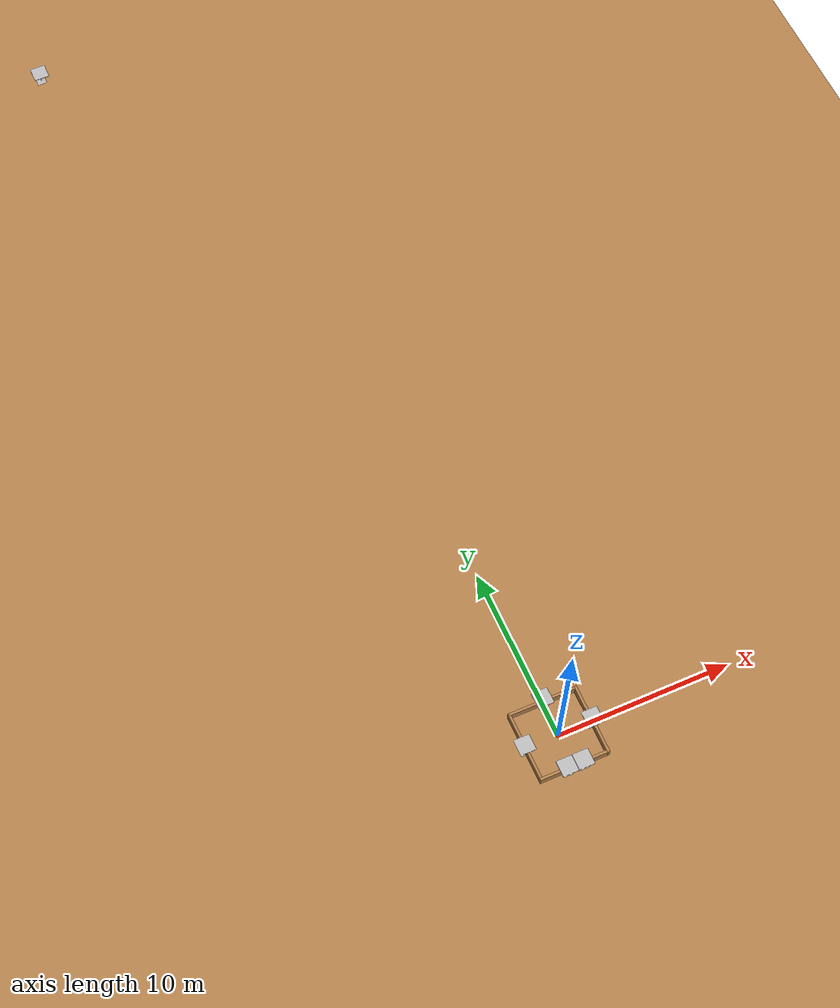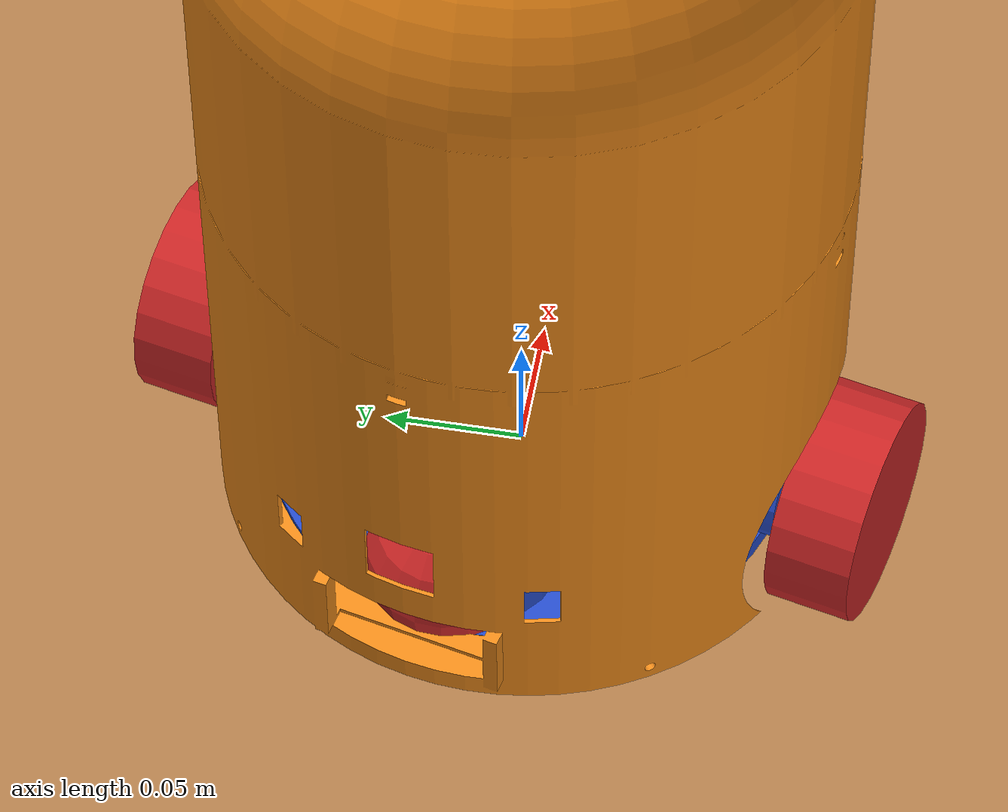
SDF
<sdf version="1.7">
 <world name="default">
  <light name="sun" type="directional">
   <pose>0 0 10 0 -0 0</pose>
   <diffuse>0.8 0.8 0.8 1</diffuse>
   <specular>0.1 0.1 0.1 1</specular>
   <attenuation>
    <range>1000</range>
    <constant>0.9</constant>
    <linear>0.01</linear>
    <quadratic>0.001</quadratic>
   </attenuation>
   <direction>-0.5 0.5 -1</direction>
   <spot><inner_angle>0</inner_angle><outer_angle>0</outer_angle><falloff>0</falloff></spot>
  </light>
  <model name="ground_plane">
   <static>1</static>
   <link name="link">
    <collision name="collision">
     <geometry><plane><normal>0 0 1</normal><size>100 100</size></plane></geometry>
     <surface><friction><ode><mu>100</mu><mu2>50</mu2></ode></friction></surface>
    </collision>
    <visual name="visual">
     <cast_shadows>0</cast_shadows>
     <geometry><plane><normal>0 0 1</normal><size>100 100</size></plane></geometry>
     <material>
      <script><uri>file://media/materials/scripts/gazebo.material</uri><name>Gazebo/Wood</name></script>
     </material>
    </visual>
   </link>
  </model>
  <gravity>0 0 -9.8</gravity>
  <magnetic_field>6e-06 2.3e-05 -4.2e-05</magnetic_field>
  <atmosphere type="adiabatic"/>
  <physics name="default_physics" default="0" type="ode">
   <max_step_size>0.001</max_step_size>
   <real_time_factor>1</real_time_factor>
   <real_time_update_rate>1000</real_time_update_rate>
  </physics>
  <scene><ambient>0.4 0.4 0.4 1</ambient><background>0.7 0.7 0.7 1</background><shadows>1</shadows></scene>
  <spherical_coordinates>
   <surface_model>EARTH_WGS84</surface_model>
   <latitude_deg>0</latitude_deg>
   <longitude_deg>0</longitude_deg>
   <elevation>0</elevation>
   <heading_deg>0</heading_deg>
  </spherical_coordinates>
  <model name="turtlebot3_square">
   <pose>-0.009396 -0.00946 0 0 -0 0</pose>
   <link name="Wall_0">
    <collision name="Wall_0_Collision">
     <geometry><box><size>4 0.15 0.5</size></box></geometry>
     <pose>0 0 0.25 0 -0 0</pose>
    </collision>
    <visual name="Wall_0_Visual">
     <pose>0 0 0.25 0 -0 0</pose>
     <geometry><box><size>4 0.15 0.5</size></box></geometry>
     <material>
      <script><uri>file://media/materials/scripts/gazebo.material</uri><name>Gazebo/Wood</name></script>
      <ambient>1 1 1 1</ambient>
     </material>
    </visual>
    <pose>0 1.925 0 0 -0 0</pose>
   </link>
   <link name="Wall_2">
    <collision name="Wall_2_Collision">
     <geometry><box><size>4 0.15 0.5</size></box></geometry>
     <pose>0 0 0.25 0 -0 0</pose>
    </collision>
    <visual name="Wall_2_Visual">
     <pose>0 0 0.25 0 -0 0</pose>
     <geometry><box><size>4 0.15 0.5</size></box></geometry>
     <material>
      <script><uri>file://media/materials/scripts/gazebo.material</uri><name>Gazebo/Wood</name></script>
      <ambient>1 1 1 1</ambient>
     </material>
    </visual>
    <pose>-1.925 0 0 0 0 -1.5708</pose>
   </link>
   <link name="Wall_3">
    <collision name="Wall_3_Collision">
     <geometry><box><size>4 0.15 0.5</size></box></geometry>
     <pose>0 0 0.25 0 -0 0</pose>
    </collision>
    <visual name="Wall_3_Visual">
     <pose>0 0 0.25 0 -0 0</pose>
     <geometry><box><size>4 0.15 0.5</size></box></geometry>
     <material>
      <script><uri>file://media/materials/scripts/gazebo.material</uri><name>Gazebo/Wood</name></script>
      <ambient>1 1 1 1</ambient>
     </material>
    </visual>
    <pose>0 -1.925 0 0 -0 0</pose>
   </link>
   <link name="Wall_4">
    <collision name="Wall_4_Collision">
     <geometry><box><size>4 0.15 0.5</size></box></geometry>
     <pose>0 0 0.25 0 -0 0</pose>
    </collision>
    <visual name="Wall_4_Visual">
     <pose>0 0 0.25 0 -0 0</pose>
     <geometry><box><size>4 0.15 0.5</size></box></geometry>
     <material>
      <script><uri>file://media/materials/scripts/gazebo.material</uri><name>Gazebo/Wood</name></script>
      <ambient>1 1 1 1</ambient>
     </material>
    </visual>
    <pose>1.925 0 0 0 -0 1.5708</pose>
   </link>
   <static>1</static>
  </model>
  <model name="my_robo">
   <link name="base_footprint">
    <inertial>
     <pose>1e-06 0 0.140868 0 -0 0</pose>
     <mass>140.009</mass>
     <inertia>
      <ixx>1.23241</ixx>
      <ixy>0.00024156</ixy>
      <ixz>0.000293737</ixz>
      <iyy>1.20933</iyy>
      <iyz>-0.0098106</iyz>
      <izz>0.246861</izz>
     </inertia>
    </inertial>
    <collision name="base_footprint_fixed_joint_lump__base_link_collision">
     <pose>0 0 0.03835 0 0 -1.57</pose>
     <geometry>
      <mesh>
       <scale>0.001 0.001 0.001</scale>
       <uri>/home/vsk/BumbleBot_WS/src/my_robot_model/urdf/meshes/Base_Plate.stl</uri>
      </mesh>
     </geometry>
    </collision>
    <collision name="base_footprint_fixed_joint_lump__laser_link_collision_1">
     <pose>0.0075 0 0.40335 0 -0 3.14</pose>
     <geometry><cylinder><length>0.046</length><radius>0.035</radius></cylinder></geometry>
    </collision>
    <collision name="base_footprint_fixed_joint_lump__robot_body_link_collision_2">
     <pose>0 0 0.0371 0 0 -1.57</pose>
     <geometry>
      <mesh>
       <scale>0.001 0.001 0.001</scale>
       <uri>/home/vsk/BumbleBot_WS/src/my_robot_model/urdf/meshes/Robot_Cover_Full.stl</uri>
      </mesh>
     </geometry>
    </collision>
    <visual name="base_footprint_fixed_joint_lump__base_link_visual">
     <pose>0 0 0.03835 0 0 -1.57</pose>
     <geometry>
      <mesh>
       <scale>0.001 0.001 0.001</scale>
       <uri>/home/vsk/BumbleBot_WS/src/my_robot_model/urdf/meshes/Base_Plate.stl</uri>
      </mesh>
     </geometry>
     <material>
      <script><name>Gazebo/Blue</name><uri>file://media/materials/scripts/gazebo.material</uri></script>
     </material>
    </visual>
    <visual name="base_footprint_fixed_joint_lump__laser_link_visual_1">
     <pose>0.0075 0 0.40335 0 -0 3.14</pose>
     <geometry><cylinder><length>0.046</length><radius>0.035</radius></cylinder></geometry>
     <material>
      <script><name>Gazebo/Green</name><uri>file://media/materials/scripts/gazebo.material</uri></script>
     </material>
    </visual>
    <visual name="base_footprint_fixed_joint_lump__robot_body_link_visual_2">
     <pose>0 0 0.0371 0 0 -1.57</pose>
     <geometry>
      <mesh>
       <scale>0.001 0.001 0.001</scale>
       <uri>/home/vsk/BumbleBot_WS/src/my_robot_model/urdf/meshes/Robot_Cover_Full.stl</uri>
      </mesh>
     </geometry>
     <material>
      <script><name>Gazebo/Orange</name><uri>file://media/materials/scripts/gazebo.material</uri></script>
     </material>
    </visual>
    <sensor name="laser" type="gpu_ray">
     <visualize>0</visualize>
     <update_rate>40</update_rate>
     <ray>
      <scan>
       <horizontal>
        <samples>720</samples>
        <resolution>1</resolution>
        <min_angle>0</min_angle>
        <max_angle>6.28</max_angle>
       </horizontal>
       <vertical><samples>1</samples><min_angle>0</min_angle><max_angle>0</max_angle></vertical>
      </scan>
      <range><min>0.1</min><max>6</max><resolution>0.1</resolution></range>
     </ray>
     <plugin name="gpu_laser" filename="libgazebo_ros_gpu_laser.so">
      <topicName>/scan</topicName>
      <frameName>laser_link</frameName>
      <robotNamespace>/</robotNamespace>
     </plugin>
     <pose>0.0075 0 0.40335 0 -0 3.14</pose>
    </sensor>
   </link>
   <joint name="front_castor_wheel_joint" type="revolute">
    <pose relative_to="base_footprint">0.07 0 0.05335 0 -0 0</pose>
    <parent>base_footprint</parent>
    <child>front_castor_wheel_link</child>
    <axis>
     <xyz>0 1 1</xyz>
     <limit><lower>-1e+16</lower><upper>1e+16</upper></limit>
     <dynamics><spring_reference>0</spring_reference><spring_stiffness>0</spring_stiffness></dynamics>
    </axis>
   </joint>
   <link name="front_castor_wheel_link">
    <pose relative_to="front_castor_wheel_joint">0 0 0 0 -0 0</pose>
    <inertial>
     <mass>0.50917</mass>
     <inertia>
      <ixx>0.0012185</ixx>
      <ixy>1.8059e-20</ixy>
      <ixz>3.0427e-20</ixz>
      <iyy>0.0012185</iyy>
      <iyz>-4.0491e-20</iyz>
      <izz>0.0022928</izz>
     </inertia>
    </inertial>
    <collision name="front_castor_wheel_link_collision">
     <geometry><sphere><radius>0.03</radius></sphere></geometry>
    </collision>
    <visual name="front_castor_wheel_link_visual">
     <geometry><sphere><radius>0.03</radius></sphere></geometry>
     <material>
      <script><name>Gazebo/Red</name><uri>file://media/materials/scripts/gazebo.material</uri></script>
     </material>
    </visual>
   </link>
   <joint name="left_wheel_joint" type="revolute">
    <pose relative_to="base_footprint">0 0.12 0.06335 -1.571 0 0</pose>
    <parent>base_footprint</parent>
    <child>left_wheel_link</child>
    <axis>
     <xyz>0 0 1</xyz>
     <limit><lower>-1e+16</lower><upper>1e+16</upper></limit>
     <dynamics><spring_reference>0</spring_reference><spring_stiffness>0</spring_stiffness></dynamics>
    </axis>
   </joint>
   <link name="left_wheel_link">
    <pose relative_to="left_wheel_joint">0 0 0 0 -0 0</pose>
    <inertial>
     <mass>0.50917</mass>
     <inertia>
      <ixx>0.0012185</ixx>
      <ixy>1.8059e-20</ixy>
      <ixz>3.0427e-20</ixz>
      <iyy>0.0012185</iyy>
      <iyz>-4.0491e-20</iyz>
      <izz>0.0022928</izz>
     </inertia>
    </inertial>
    <collision name="left_wheel_link_collision">
     <geometry><cylinder><length>0.03</length><radius>0.04</radius></cylinder></geometry>
    </collision>
    <visual name="left_wheel_link_visual">
     <geometry><cylinder><length>0.03</length><radius>0.04</radius></cylinder></geometry>
     <material>
      <script><name>Gazebo/Red</name><uri>file://media/materials/scripts/gazebo.material</uri></script>
     </material>
    </visual>
   </link>
   <joint name="rear_castor_wheel_joint" type="revolute">
    <pose relative_to="base_footprint">-0.07 0 0.05335 0 -0 0</pose>
    <parent>base_footprint</parent>
    <child>rear_castor_wheel_link</child>
    <axis>
     <xyz>0 1 1</xyz>
     <limit><lower>-1e+16</lower><upper>1e+16</upper></limit>
     <dynamics><spring_reference>0</spring_reference><spring_stiffness>0</spring_stiffness></dynamics>
    </axis>
   </joint>
   <link name="rear_castor_wheel_link">
    <pose relative_to="rear_castor_wheel_joint">0 0 0 0 -0 0</pose>
    <inertial>
     <mass>0.50917</mass>
     <inertia>
      <ixx>0.0012185</ixx>
      <ixy>1.8059e-20</ixy>
      <ixz>3.0427e-20</ixz>
      <iyy>0.0012185</iyy>
      <iyz>-4.0491e-20</iyz>
      <izz>0.0022928</izz>
     </inertia>
    </inertial>
    <collision name="rear_castor_wheel_link_collision">
     <geometry><sphere><radius>0.03</radius></sphere></geometry>
    </collision>
    <visual name="rear_castor_wheel_link_visual">
     <geometry><sphere><radius>0.03</radius></sphere></geometry>
     <material>
      <script><name>Gazebo/Red</name><uri>file://media/materials/scripts/gazebo.material</uri></script>
     </material>
    </visual>
   </link>
   <joint name="right_wheel_joint" type="revolute">
    <pose relative_to="base_footprint">0 -0.12 0.06335 1.571 -0 0</pose>
    <parent>base_footprint</parent>
    <child>right_wheel_link</child>
    <axis>
     <xyz>0 0 -1</xyz>
     <limit><lower>-1e+16</lower><upper>1e+16</upper></limit>
     <dynamics><spring_reference>0</spring_reference><spring_stiffness>0</spring_stiffness></dynamics>
    </axis>
   </joint>
   <link name="right_wheel_link">
    <pose relative_to="right_wheel_joint">0 0 0 0 -0 0</pose>
    <inertial>
     <mass>0.50917</mass>
     <inertia>
      <ixx>0.0012185</ixx>
      <ixy>1.8059e-20</ixy>
      <ixz>3.0427e-20</ixz>
      <iyy>0.0012185</iyy>
      <iyz>-4.0491e-20</iyz>
      <izz>0.0022928</izz>
     </inertia>
    </inertial>
    <collision name="right_wheel_link_collision">
     <geometry><cylinder><length>0.03</length><radius>0.04</radius></cylinder></geometry>
    </collision>
    <visual name="right_wheel_link_visual">
     <geometry><cylinder><length>0.03</length><radius>0.04</radius></cylinder></geometry>
     <material>
      <script><name>Gazebo/Red</name><uri>file://media/materials/scripts/gazebo.material</uri></script>
     </material>
    </visual>
   </link>
   <static>0</static>
   <plugin name="differential_drive_controller" filename="libgazebo_ros_diff_drive.so">
    <updateRate>10</updateRate>
    <leftJoint>left_wheel_joint</leftJoint>
    <rightJoint>right_wheel_joint</rightJoint>
    <wheelSeparation>0.23</wheelSeparation>
    <wheelDiameter>0.085</wheelDiameter>
    <wheelAcceleration>0.75</wheelAcceleration>
    <wheelTorque>500</wheelTorque>
    <commandTopic>cmd_vel</commandTopic>
    <odometryTopic>odom</odometryTopic>
    <odometryFrame>odom</odometryFrame>
    <robotBaseFrame>base_footprint</robotBaseFrame>
    <odometrySource>1</odometrySource>
    <publishWheelTF>1</publishWheelTF>
    <publishOdom>1</publishOdom>
    <publishWheelJointState>1</publishWheelJointState>
    <legacyMode>0</legacyMode>
    <robotNamespace>/</robotNamespace>
   </plugin>
   <pose>-0.010652 -0.004056 -0.023382 8e-06 1e-05 -0.226396</pose>
  </model>
  <model name="cafe_table">
   <static>1</static>
   <link name="link">
    <collision name="surface">
     <pose>0 0 0.755 0 -0 0</pose>
     <geometry><box><size>0.913 0.913 0.04</size></box></geometry>
    </collision>
    <collision name="column">
     <pose>0 0 0.37 0 -0 0</pose>
     <geometry><box><size>0.042 0.042 0.74</size></box></geometry>
    </collision>
    <collision name="base">
     <pose>0 0 0.02 0 -0 0</pose>
     <geometry><box><size>0.56 0.56 0.04</size></box></geometry>
    </collision>
    <visual name="visual">
     <geometry><mesh><uri>model://cafe_table/meshes/cafe_table.dae</uri></mesh></geometry>
    </visual>
   </link>
   <pose>-1.97707 -0.006913 0 0 -0 0</pose>
  </model>
  <model name="cafe_table_0">
   <static>1</static>
   <link name="link">
    <collision name="surface">
     <pose>0 0 0.755 0 -0 0</pose>
     <geometry><box><size>0.913 0.913 0.04</size></box></geometry>
    </collision>
    <collision name="column">
     <pose>0 0 0.37 0 -0 0</pose>
     <geometry><box><size>0.042 0.042 0.74</size></box></geometry>
    </collision>
    <collision name="base">
     <pose>0 0 0.02 0 -0 0</pose>
     <geometry><box><size>0.56 0.56 0.04</size></box></geometry>
    </collision>
    <visual name="visual">
     <geometry><mesh><uri>model://cafe_table/meshes/cafe_table.dae</uri></mesh></geometry>
    </visual>
   </link>
   <pose>1.9271 -0.012342 0 0 -0 0</pose>
  </model>
  <model name="cafe_table_1">
   <static>1</static>
   <link name="link">
    <collision name="surface">
     <pose>0 0 0.755 0 -0 0</pose>
     <geometry><box><size>0.913 0.913 0.04</size></box></geometry>
    </collision>
    <collision name="column">
     <pose>0 0 0.37 0 -0 0</pose>
     <geometry><box><size>0.042 0.042 0.74</size></box></geometry>
    </collision>
    <collision name="base">
     <pose>0 0 0.02 0 -0 0</pose>
     <geometry><box><size>0.56 0.56 0.04</size></box></geometry>
    </collision>
    <visual name="visual">
     <geometry><mesh><uri>model://cafe_table/meshes/cafe_table.dae</uri></mesh></geometry>
    </visual>
   </link>
   <pose>-0.000805 1.96612 0 0 -0 0</pose>
  </model>
  <model name="cafe_table_2">
   <static>1</static>
   <link name="link">
    <collision name="surface">
     <pose>0 0 0.755 0 -0 0</pose>
     <geometry><box><size>0.913 0.913 0.04</size></box></geometry>
    </collision>
    <collision name="column">
     <pose>0 0 0.37 0 -0 0</pose>
     <geometry><box><size>0.042 0.042 0.74</size></box></geometry>
    </collision>
    <collision name="base">
     <pose>0 0 0.02 0 -0 0</pose>
     <geometry><box><size>0.56 0.56 0.04</size></box></geometry>
    </collision>
    <visual name="visual">
     <geometry><mesh><uri>model://cafe_table/meshes/cafe_table.dae</uri></mesh></geometry>
    </visual>
   </link>
   <pose>-10.4301 51.4624 0 0 -0 0</pose>
  </model>
  <model name="cafe_table_3">
   <static>1</static>
   <link name="link">
    <collision name="surface">
     <pose>0 0 0.755 0 -0 0</pose>
     <geometry><box><size>0.913 0.913 0.04</size></box></geometry>
    </collision>
    <collision name="column">
     <pose>0 0 0.37 0 -0 0</pose>
     <geometry><box><size>0.042 0.042 0.74</size></box></geometry>
    </collision>
    <collision name="base">
     <pose>0 0 0.02 0 -0 0</pose>
     <geometry><box><size>0.56 0.56 0.04</size></box></geometry>
    </collision>
    <visual name="visual">
     <geometry><mesh><uri>model://cafe_table/meshes/cafe_table.dae</uri></mesh></geometry>
    </visual>
   </link>
   <pose>0.463173 -1.91293 0 0 -0 0</pose>
  </model>
  <model name="cafe_table_4">
   <static>1</static>
   <link name="link">
    <collision name="surface">
     <pose>0 0 0.755 0 -0 0</pose>
     <geometry><box><size>0.913 0.913 0.04</size></box></geometry>
    </collision>
    <collision name="column">
     <pose>0 0 0.37 0 -0 0</pose>
     <geometry><box><size>0.042 0.042 0.74</size></box></geometry>
    </collision>
    <collision name="base">
     <pose>0 0 0.02 0 -0 0</pose>
     <geometry><box><size>0.56 0.56 0.04</size></box></geometry>
    </collision>
    <visual name="visual">
     <geometry><mesh><uri>model://cafe_table/meshes/cafe_table.dae</uri></mesh></geometry>
    </visual>
   </link>
   <pose>-0.461469 -1.91977 0 0 -0 0</pose>
  </model>
 </world>
</sdf>
